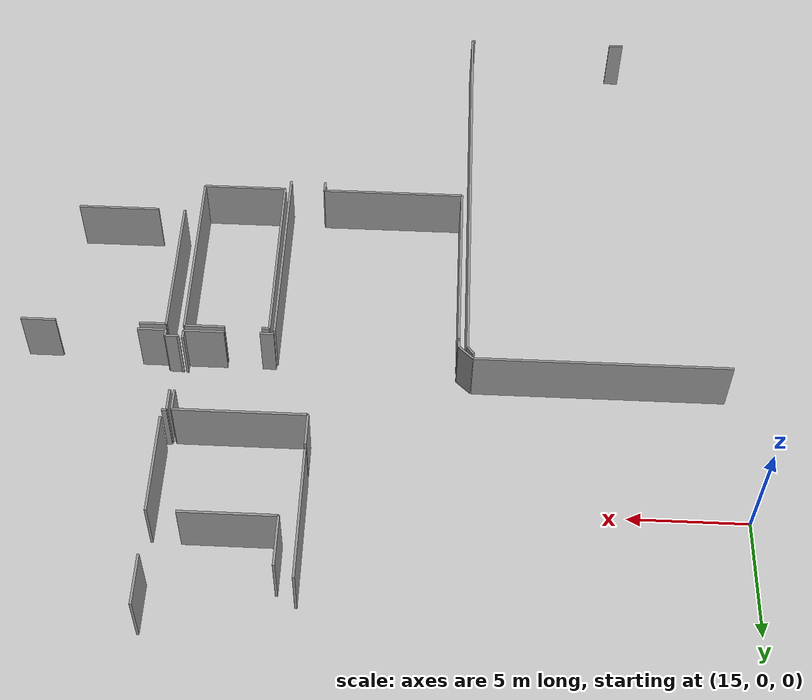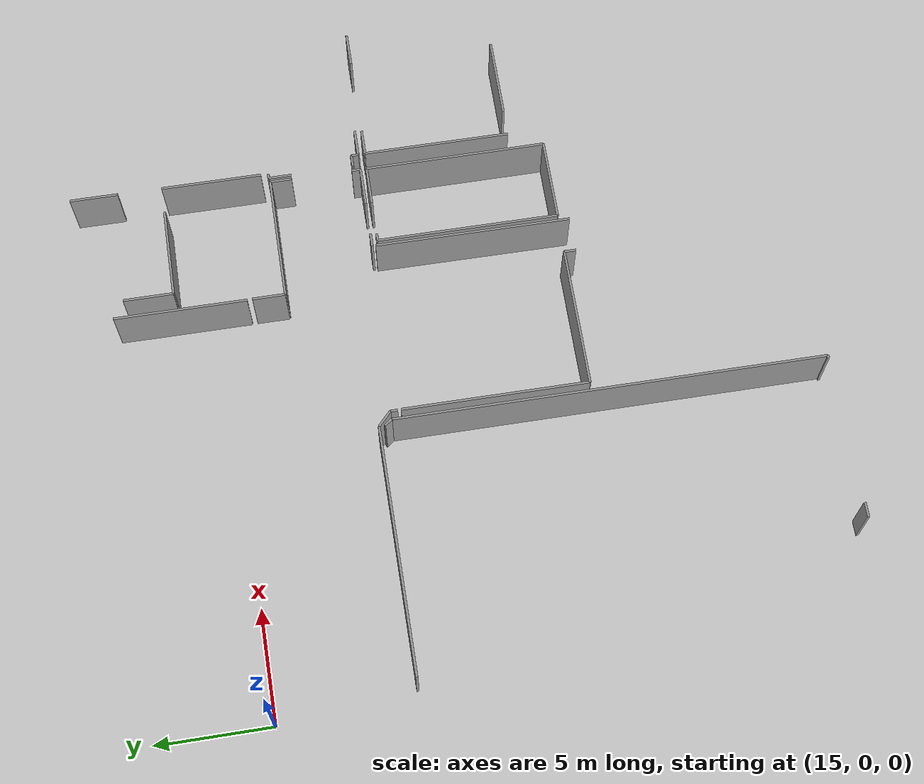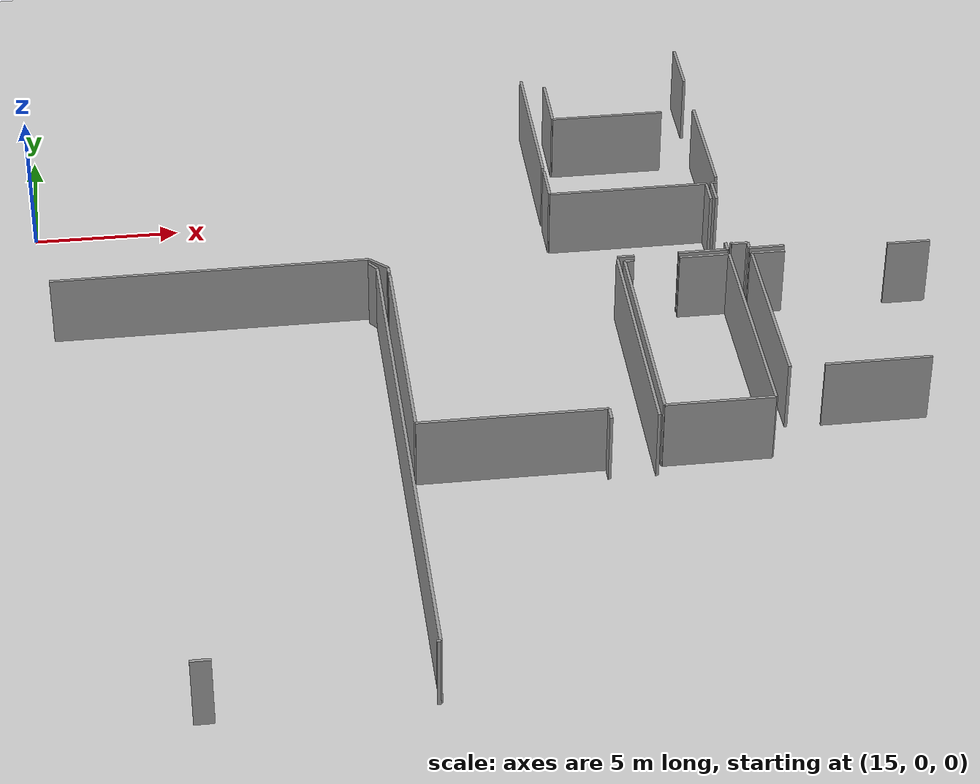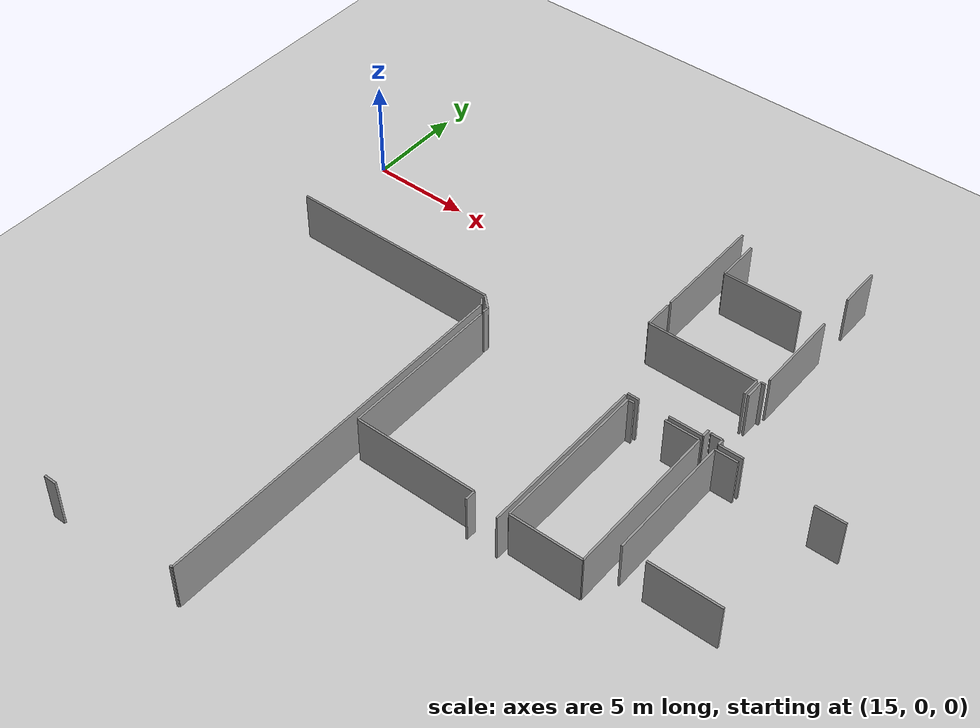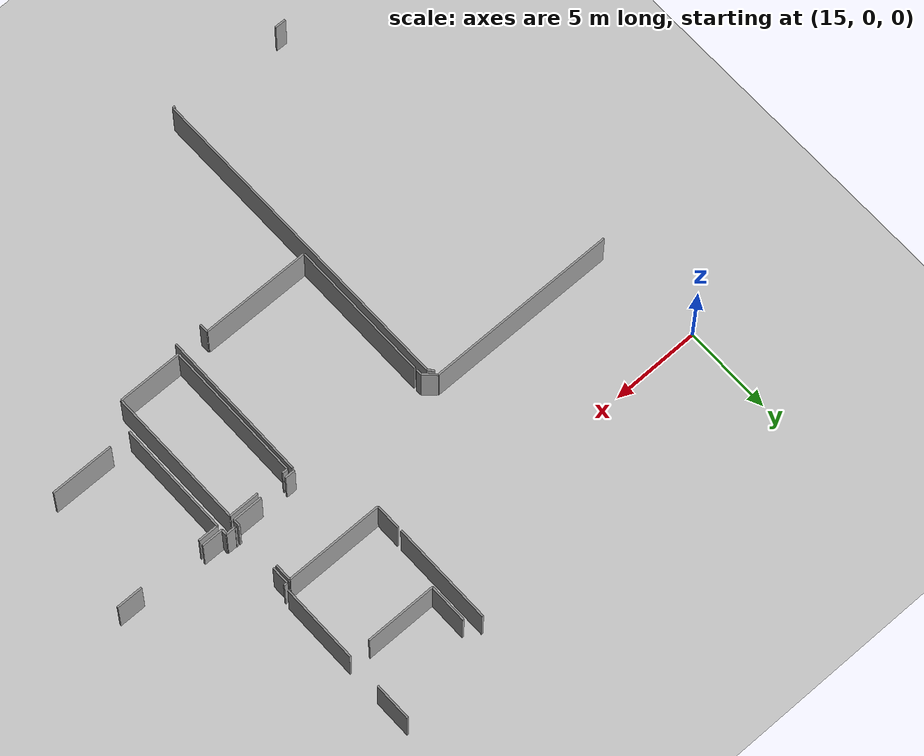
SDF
<sdf version="1.6">
 <world name="default">
  <model name="ground_plane">
   <static>1</static>
   <link name="link">
    <collision name="collision">
     <geometry><plane><normal>0 0 1</normal><size>100 100</size></plane></geometry>
     <surface><friction><ode><mu>100</mu><mu2>50</mu2></ode></friction></surface>
    </collision>
    <visual name="visual">
     <cast_shadows>0</cast_shadows>
     <geometry><plane><normal>0 0 1</normal><size>100 100</size></plane></geometry>
     <material>
      <script><uri>file://media/materials/scripts/gazebo.material</uri><name>Gazebo/Grey</name></script>
     </material>
    </visual>
   </link>
  </model>
  <model name="0510032218_A-40">
   <static>1</static>
   <link name="Wall_156">
    <collision name="Wall_156_Collision">
     <geometry><box><size>4.40326214578 0.1 2.5</size></box></geometry>
     <pose>2.20163107289 0 1.25 0 0 0</pose>
    </collision>
    <visual name="Wall_156_Visual">
     <pose>2.20163107289 0 1.25 0 0 0</pose>
     <geometry><box><size>4.40326214578 0.1 2.5</size></box></geometry>
     <material>
      <script><uri>file://media/materials/scripts/gazebo.material</uri><name>Gazebo/Grey</name></script>
      <ambient>1 1 1 1</ambient>
     </material>
    </visual>
    <pose>113.745527243 -52.1540951353 0 0 0 1.57079632679</pose>
   </link>
   <link name="Wall_157">
    <collision name="Wall_157_Collision">
     <geometry><box><size>2.11531748802 0.1 2.5</size></box></geometry>
     <pose>1.05765874401 0 1.25 0 0 0</pose>
    </collision>
    <visual name="Wall_157_Visual">
     <pose>1.05765874401 0 1.25 0 0 0</pose>
     <geometry><box><size>2.11531748802 0.1 2.5</size></box></geometry>
     <material>
      <script><uri>file://media/materials/scripts/gazebo.material</uri><name>Gazebo/Grey</name></script>
      <ambient>1 1 1 1</ambient>
     </material>
    </visual>
    <pose>113.745527243 -45.8170278933 0 0 0 1.57079632679</pose>
   </link>
   <link name="Wall_173">
    <collision name="Wall_173_Collision">
     <geometry><box><size>3.98781455272 0.1 2.5</size></box></geometry>
     <pose>1.99390727636 0 1.25 0 0 0</pose>
    </collision>
    <visual name="Wall_173_Visual">
     <pose>1.99390727636 0 1.25 0 0 0</pose>
     <geometry><box><size>3.98781455272 0.1 2.5</size></box></geometry>
     <material>
      <script><uri>file://media/materials/scripts/gazebo.material</uri><name>Gazebo/Grey</name></script>
      <ambient>1 1 1 1</ambient>
     </material>
    </visual>
    <pose>112.562396471 -47.7686034335 0 0 0 3.14159265359</pose>
   </link>
   <link name="Wall_174">
    <collision name="Wall_174_Collision">
     <geometry><box><size>2.17484847523 0.1 2.5</size></box></geometry>
     <pose>1.08742423762 0 1.25 0 0 0</pose>
    </collision>
    <visual name="Wall_174_Visual">
     <pose>1.08742423762 0 1.25 0 0 0</pose>
     <geometry><box><size>2.17484847523 0.1 2.5</size></box></geometry>
     <material>
      <script><uri>file://media/materials/scripts/gazebo.material</uri><name>Gazebo/Grey</name></script>
      <ambient>1 1 1 1</ambient>
     </material>
    </visual>
    <pose>108.574581919 -47.7686034335 0 0 0 1.57079632679</pose>
   </link>
   <link name="Wall_178">
    <collision name="Wall_178_Collision">
     <geometry><box><size>1.21016723257 0.1 2.5</size></box></geometry>
     <pose>0.605083616285 0 1.25 0 0 0</pose>
    </collision>
    <visual name="Wall_178_Visual">
     <pose>0.605083616285 0 1.25 0 0 0</pose>
     <geometry><box><size>1.21016723257 0.1 2.5</size></box></geometry>
     <material>
      <script><uri>file://media/materials/scripts/gazebo.material</uri><name>Gazebo/Grey</name></script>
      <ambient>1 1 1 1</ambient>
     </material>
    </visual>
    <pose>115.300314156 -56.5499952401 0 0 0 3.14159265359</pose>
   </link>
   <link name="Wall_179">
    <collision name="Wall_179_Collision">
     <geometry><box><size>0.311363564243 0.1 2.5</size></box></geometry>
     <pose>0.155681782122 0 1.25 0 0 0</pose>
    </collision>
    <visual name="Wall_179_Visual">
     <pose>0.155681782122 0 1.25 0 0 0</pose>
     <geometry><box><size>0.311363564243 0.1 2.5</size></box></geometry>
     <material>
      <script><uri>file://media/materials/scripts/gazebo.material</uri><name>Gazebo/Grey</name></script>
      <ambient>1 1 1 1</ambient>
     </material>
    </visual>
    <pose>114.090146923 -56.5499952401 0 0 0 1.57079632679</pose>
   </link>
   <link name="Wall_180">
    <collision name="Wall_180_Collision">
     <geometry><box><size>0.559134325516 0.1 2.5</size></box></geometry>
     <pose>0.279567162758 0 1.25 0 0 0</pose>
    </collision>
    <visual name="Wall_180_Visual">
     <pose>0.279567162758 0 1.25 0 0 0</pose>
     <geometry><box><size>0.559134325516 0.1 2.5</size></box></geometry>
     <material>
      <script><uri>file://media/materials/scripts/gazebo.material</uri><name>Gazebo/Grey</name></script>
      <ambient>1 1 1 1</ambient>
     </material>
    </visual>
    <pose>114.090146923 -56.2386316758 0 0 0 3.14159265359</pose>
   </link>
   <link name="Wall_181">
    <collision name="Wall_181_Collision">
     <geometry><box><size>0.066893028274 0.1 2.5</size></box></geometry>
     <pose>0.033446514137 0 1.25 0 0 0</pose>
    </collision>
    <visual name="Wall_181_Visual">
     <pose>0.033446514137 0 1.25 0 0 0</pose>
     <geometry><box><size>0.066893028274 0.1 2.5</size></box></geometry>
     <material>
      <script><uri>file://media/materials/scripts/gazebo.material</uri><name>Gazebo/Grey</name></script>
      <ambient>1 1 1 1</ambient>
     </material>
    </visual>
    <pose>113.531012598 -56.2386316758 0 0 0 1.57079632679</pose>
   </link>
   <link name="Wall_182">
    <collision name="Wall_182_Collision">
     <geometry><box><size>0.993113952972 0.1 2.5</size></box></geometry>
     <pose>0.496556976486 0 1.25 0 0 0</pose>
    </collision>
    <visual name="Wall_182_Visual">
     <pose>0.496556976486 0 1.25 0 0 0</pose>
     <geometry><box><size>0.993113952972 0.1 2.5</size></box></geometry>
     <material>
      <script><uri>file://media/materials/scripts/gazebo.material</uri><name>Gazebo/Grey</name></script>
      <ambient>1 1 1 1</ambient>
     </material>
    </visual>
    <pose>113.531012598 -53.476089233 0 0 0 1.57079632679</pose>
   </link>
   <link name="Wall_183">
    <collision name="Wall_183_Collision">
     <geometry><box><size>0.208675784597 0.1 2.5</size></box></geometry>
     <pose>0.104337892298 0 1.25 0 0 0</pose>
    </collision>
    <visual name="Wall_183_Visual">
     <pose>0.104337892298 0 1.25 0 0 0</pose>
     <geometry><box><size>0.208675784597 0.1 2.5</size></box></geometry>
     <material>
      <script><uri>file://media/materials/scripts/gazebo.material</uri><name>Gazebo/Grey</name></script>
      <ambient>1 1 1 1</ambient>
     </material>
    </visual>
    <pose>113.531012598 -52.48297528 0 0 0 0.0</pose>
   </link>
   <link name="Wall_243">
    <collision name="Wall_243_Collision">
     <geometry><box><size>3.5608161711 0.1 2.5</size></box></geometry>
     <pose>1.78040808555 0 1.25 0 0 0</pose>
    </collision>
    <visual name="Wall_243_Visual">
     <pose>1.78040808555 0 1.25 0 0 0</pose>
     <geometry><box><size>3.5608161711 0.1 2.5</size></box></geometry>
     <material>
      <script><uri>file://media/materials/scripts/gazebo.material</uri><name>Gazebo/Grey</name></script>
      <ambient>1 1 1 1</ambient>
     </material>
    </visual>
    <pose>118.841963634 -63.2851204265 0 0 0 3.14159265359</pose>
   </link>
   <link name="Wall_244">
    <collision name="Wall_244_Collision">
     <geometry><box><size>6.43061593628 0.1 2.5</size></box></geometry>
     <pose>3.21530796814 0 1.25 0 0 0</pose>
    </collision>
    <visual name="Wall_244_Visual">
     <pose>3.21530796814 0 1.25 0 0 0</pose>
     <geometry><box><size>6.43061593628 0.1 2.5</size></box></geometry>
     <material>
      <script><uri>file://media/materials/scripts/gazebo.material</uri><name>Gazebo/Grey</name></script>
      <ambient>1 1 1 1</ambient>
     </material>
    </visual>
    <pose>114.115152477 -63.2851204265 0 0 0 1.57079632679</pose>
   </link>
   <link name="Wall_245">
    <collision name="Wall_245_Collision">
     <geometry><box><size>1.13807000286 0.1 2.5</size></box></geometry>
     <pose>0.569035001428 0 1.25 0 0 0</pose>
    </collision>
    <visual name="Wall_245_Visual">
     <pose>0.569035001428 0 1.25 0 0 0</pose>
     <geometry><box><size>1.13807000286 0.1 2.5</size></box></geometry>
     <material>
      <script><uri>file://media/materials/scripts/gazebo.material</uri><name>Gazebo/Grey</name></script>
      <ambient>1 1 1 1</ambient>
     </material>
    </visual>
    <pose>114.115152477 -56.8545044902 0 0 0 0.0</pose>
   </link>
   <link name="Wall_246">
    <collision name="Wall_246_Collision">
     <geometry><box><size>1.48256275188 0.1 2.5</size></box></geometry>
     <pose>0.74128137594 0 1.25 0 0 0</pose>
    </collision>
    <visual name="Wall_246_Visual">
     <pose>0.74128137594 0 1.25 0 0 0</pose>
     <geometry><box><size>1.48256275188 0.1 2.5</size></box></geometry>
     <material>
      <script><uri>file://media/materials/scripts/gazebo.material</uri><name>Gazebo/Grey</name></script>
      <ambient>1 1 1 1</ambient>
     </material>
    </visual>
    <pose>118.81911592 -56.8545044902 0 0 0 0.0</pose>
   </link>
   <link name="Wall_267">
    <collision name="Wall_267_Collision">
     <geometry><box><size>1.42569733126 0.1 2.5</size></box></geometry>
     <pose>0.71284866563 0 1.25 0 0 0</pose>
    </collision>
    <visual name="Wall_267_Visual">
     <pose>0.71284866563 0 1.25 0 0 0</pose>
     <geometry><box><size>1.42569733126 0.1 2.5</size></box></geometry>
     <material>
      <script><uri>file://media/materials/scripts/gazebo.material</uri><name>Gazebo/Grey</name></script>
      <ambient>1 1 1 1</ambient>
     </material>
    </visual>
    <pose>107.791413068 -51.0990384921 0 0 0 -1.57079632679</pose>
   </link>
   <link name="Wall_268">
    <collision name="Wall_268_Collision">
     <geometry><box><size>5.54767873576 0.1 2.5</size></box></geometry>
     <pose>2.77383936788 0 1.25 0 0 0</pose>
    </collision>
    <visual name="Wall_268_Visual">
     <pose>2.77383936788 0 1.25 0 0 0</pose>
     <geometry><box><size>5.54767873576 0.1 2.5</size></box></geometry>
     <material>
      <script><uri>file://media/materials/scripts/gazebo.material</uri><name>Gazebo/Grey</name></script>
      <ambient>1 1 1 1</ambient>
     </material>
    </visual>
    <pose>107.791413068 -52.5247358233 0 0 0 0.0</pose>
   </link>
   <link name="Wall_269">
    <collision name="Wall_269_Collision">
     <geometry><box><size>0.951353409704 0.1 2.5</size></box></geometry>
     <pose>0.475676704852 0 1.25 0 0 0</pose>
    </collision>
    <visual name="Wall_269_Visual">
     <pose>0.475676704852 0 1.25 0 0 0</pose>
     <geometry><box><size>0.951353409704 0.1 2.5</size></box></geometry>
     <material>
      <script><uri>file://media/materials/scripts/gazebo.material</uri><name>Gazebo/Grey</name></script>
      <ambient>1 1 1 1</ambient>
     </material>
    </visual>
    <pose>113.339091803 -52.5247358233 0 0 0 -1.57079632679</pose>
   </link>
   <link name="Wall_270">
    <collision name="Wall_270_Collision">
     <geometry><box><size>0.393488401612 0.1 2.5</size></box></geometry>
     <pose>0.196744200806 0 1.25 0 0 0</pose>
    </collision>
    <visual name="Wall_270_Visual">
     <pose>0.196744200806 0 1.25 0 0 0</pose>
     <geometry><box><size>0.393488401612 0.1 2.5</size></box></geometry>
     <material>
      <script><uri>file://media/materials/scripts/gazebo.material</uri><name>Gazebo/Grey</name></script>
      <ambient>1 1 1 1</ambient>
     </material>
    </visual>
    <pose>113.339091803 -56.1539682036 0 0 0 -1.57079632679</pose>
   </link>
   <link name="Wall_271">
    <collision name="Wall_271_Collision">
     <geometry><box><size>1.7050740964 0.1 2.5</size></box></geometry>
     <pose>0.852537048202 0 1.25 0 0 0</pose>
    </collision>
    <visual name="Wall_271_Visual">
     <pose>0.852537048202 0 1.25 0 0 0</pose>
     <geometry><box><size>1.7050740964 0.1 2.5</size></box></geometry>
     <material>
      <script><uri>file://media/materials/scripts/gazebo.material</uri><name>Gazebo/Grey</name></script>
      <ambient>1 1 1 1</ambient>
     </material>
    </visual>
    <pose>113.339091803 -56.5474566052 0 0 0 3.14159265359</pose>
   </link>
   <link name="Wall_272">
    <collision name="Wall_272_Collision">
     <geometry><box><size>0.585409196205 0.1 2.5</size></box></geometry>
     <pose>0.292704598102 0 1.25 0 0 0</pose>
    </collision>
    <visual name="Wall_272_Visual">
     <pose>0.292704598102 0 1.25 0 0 0</pose>
     <geometry><box><size>0.585409196205 0.1 2.5</size></box></geometry>
     <material>
      <script><uri>file://media/materials/scripts/gazebo.material</uri><name>Gazebo/Grey</name></script>
      <ambient>1 1 1 1</ambient>
     </material>
    </visual>
    <pose>110.117437248 -56.5474566052 0 0 0 3.14159265359</pose>
   </link>
   <link name="Wall_273">
    <collision name="Wall_273_Collision">
     <geometry><box><size>0.308824929394 0.1 2.5</size></box></geometry>
     <pose>0.154412464697 0 1.25 0 0 0</pose>
    </collision>
    <visual name="Wall_273_Visual">
     <pose>0.154412464697 0 1.25 0 0 0</pose>
     <geometry><box><size>0.308824929394 0.1 2.5</size></box></geometry>
     <material>
      <script><uri>file://media/materials/scripts/gazebo.material</uri><name>Gazebo/Grey</name></script>
      <ambient>1 1 1 1</ambient>
     </material>
    </visual>
    <pose>101.746542697 -56.5474566052 0 0 0 1.57079632679</pose>
   </link>
   <link name="Wall_274">
    <collision name="Wall_274_Collision">
     <geometry><box><size>0.832635862609 0.1 2.5</size></box></geometry>
     <pose>0.416317931304 0 1.25 0 0 0</pose>
    </collision>
    <visual name="Wall_274_Visual">
     <pose>0.416317931304 0 1.25 0 0 0</pose>
     <geometry><box><size>0.832635862609 0.1 2.5</size></box></geometry>
     <material>
      <script><uri>file://media/materials/scripts/gazebo.material</uri><name>Gazebo/Grey</name></script>
      <ambient>1 1 1 1</ambient>
     </material>
    </visual>
    <pose>101.746542697 -56.2386316758 0 0 0 2.39166660733</pose>
   </link>
   <link name="Wall_275">
    <collision name="Wall_275_Collision">
     <geometry><box><size>10.7747278901 0.1 2.5</size></box></geometry>
     <pose>5.38736394504 0 1.25 0 0 0</pose>
    </collision>
    <visual name="Wall_275_Visual">
     <pose>5.38736394504 0 1.25 0 0 0</pose>
     <geometry><box><size>10.7747278901 0.1 2.5</size></box></geometry>
     <material>
      <script><uri>file://media/materials/scripts/gazebo.material</uri><name>Gazebo/Grey</name></script>
      <ambient>1 1 1 1</ambient>
     </material>
    </visual>
    <pose>101.137270333 -55.6711198553 0 0 0 3.14159265359</pose>
   </link>
   <link name="Wall_288">
    <collision name="Wall_288_Collision">
     <geometry><box><size>3.61755465998 0.1 2.5</size></box></geometry>
     <pose>1.80877732999 0 1.25 0 0 0</pose>
    </collision>
    <visual name="Wall_288_Visual">
     <pose>1.80877732999 0 1.25 0 0 0</pose>
     <geometry><box><size>3.61755465998 0.1 2.5</size></box></geometry>
     <material>
      <script><uri>file://media/materials/scripts/gazebo.material</uri><name>Gazebo/Grey</name></script>
      <ambient>1 1 1 1</ambient>
     </material>
    </visual>
    <pose>113.364858947 -64.773268175 0 0 0 3.14159265359</pose>
   </link>
   <link name="Wall_289">
    <collision name="Wall_289_Collision">
     <geometry><box><size>7.95658934408 0.1 2.5</size></box></geometry>
     <pose>3.97829467204 0 1.25 0 0 0</pose>
    </collision>
    <visual name="Wall_289_Visual">
     <pose>3.97829467204 0 1.25 0 0 0</pose>
     <geometry><box><size>7.95658934408 0.1 2.5</size></box></geometry>
     <material>
      <script><uri>file://media/materials/scripts/gazebo.material</uri><name>Gazebo/Grey</name></script>
      <ambient>1 1 1 1</ambient>
     </material>
    </visual>
    <pose>109.747304287 -64.773268175 0 0 0 1.57079632679</pose>
   </link>
   <link name="Wall_290">
    <collision name="Wall_290_Collision">
     <geometry><box><size>0.318471741821 0.1 2.5</size></box></geometry>
     <pose>0.15923587091 0 1.25 0 0 0</pose>
    </collision>
    <visual name="Wall_290_Visual">
     <pose>0.15923587091 0 1.25 0 0 0</pose>
     <geometry><box><size>0.318471741821 0.1 2.5</size></box></geometry>
     <material>
      <script><uri>file://media/materials/scripts/gazebo.material</uri><name>Gazebo/Grey</name></script>
      <ambient>1 1 1 1</ambient>
     </material>
    </visual>
    <pose>109.747304287 -56.816678831 0 0 0 0.0</pose>
   </link>
   <link name="Wall_291">
    <collision name="Wall_291_Collision">
     <geometry><box><size>1.71078602482 0.1 2.5</size></box></geometry>
     <pose>0.855393012408 0 1.25 0 0 0</pose>
    </collision>
    <visual name="Wall_291_Visual">
     <pose>0.855393012408 0 1.25 0 0 0</pose>
     <geometry><box><size>1.71078602482 0.1 2.5</size></box></geometry>
     <material>
      <script><uri>file://media/materials/scripts/gazebo.material</uri><name>Gazebo/Grey</name></script>
      <ambient>1 1 1 1</ambient>
     </material>
    </visual>
    <pose>111.632494526 -56.816678831 0 0 0 0.0</pose>
   </link>
   <link name="Wall_292">
    <collision name="Wall_292_Collision">
     <geometry><box><size>7.9566186045 0.1 2.5</size></box></geometry>
     <pose>3.97830930225 0 1.25 0 0 0</pose>
    </collision>
    <visual name="Wall_292_Visual">
     <pose>3.97830930225 0 1.25 0 0 0</pose>
     <geometry><box><size>7.9566186045 0.1 2.5</size></box></geometry>
     <material>
      <script><uri>file://media/materials/scripts/gazebo.material</uri><name>Gazebo/Grey</name></script>
      <ambient>1 1 1 1</ambient>
     </material>
    </visual>
    <pose>113.343280551 -56.816678831 0 0 0 -1.56808431762</pose>
   </link>
   <link name="Wall_293">
    <collision name="Wall_293_Collision">
     <geometry><box><size>0.508742423762 0.1 2.5</size></box></geometry>
     <pose>0.254371211881 0 1.25 0 0 0</pose>
    </collision>
    <visual name="Wall_293_Visual">
     <pose>0.254371211881 0 1.25 0 0 0</pose>
     <geometry><box><size>0.508742423762 0.1 2.5</size></box></geometry>
     <material>
      <script><uri>file://media/materials/scripts/gazebo.material</uri><name>Gazebo/Grey</name></script>
      <ambient>1 1 1 1</ambient>
     </material>
    </visual>
    <pose>107.957947514 -65.2623361787 0 0 0 1.57079632679</pose>
   </link>
   <link name="Wall_294">
    <collision name="Wall_294_Collision">
     <geometry><box><size>6.20023482372 0.1 2.5</size></box></geometry>
     <pose>3.10011741186 0 1.25 0 0 0</pose>
    </collision>
    <visual name="Wall_294_Visual">
     <pose>3.10011741186 0 1.25 0 0 0</pose>
     <geometry><box><size>6.20023482372 0.1 2.5</size></box></geometry>
     <material>
      <script><uri>file://media/materials/scripts/gazebo.material</uri><name>Gazebo/Grey</name></script>
      <ambient>1 1 1 1</ambient>
     </material>
    </visual>
    <pose>107.957947514 -64.753593755 0 0 0 3.14159265359</pose>
   </link>
   <link name="Wall_295">
    <collision name="Wall_295_Collision">
     <geometry><box><size>8.06575064259 0.1 2.5</size></box></geometry>
     <pose>4.0328753213 0 1.25 0 0 0</pose>
    </collision>
    <visual name="Wall_295_Visual">
     <pose>4.0328753213 0 1.25 0 0 0</pose>
     <geometry><box><size>8.06575064259 0.1 2.5</size></box></geometry>
     <material>
      <script><uri>file://media/materials/scripts/gazebo.material</uri><name>Gazebo/Grey</name></script>
      <ambient>1 1 1 1</ambient>
     </material>
    </visual>
    <pose>101.75771269 -64.753593755 0 0 0 1.57079632679</pose>
   </link>
   <link name="Wall_296">
    <collision name="Wall_296_Collision">
     <geometry><box><size>8.57452053856 0.1 2.5</size></box></geometry>
     <pose>4.28726026928 0 1.25 0 0 0</pose>
    </collision>
    <visual name="Wall_296_Visual">
     <pose>4.28726026928 0 1.25 0 0 0</pose>
     <geometry><box><size>8.57452053856 0.1 2.5</size></box></geometry>
     <material>
      <script><uri>file://media/materials/scripts/gazebo.material</uri><name>Gazebo/Grey</name></script>
      <ambient>1 1 1 1</ambient>
     </material>
    </visual>
    <pose>109.524919874 -56.6878431124 0 0 0 -1.57332770462</pose>
   </link>
   <link name="Wall_297">
    <collision name="Wall_297_Collision">
     <geometry><box><size>0.116142544347 0.1 2.5</size></box></geometry>
     <pose>0.0580712721734 0 1.25 0 0 0</pose>
    </collision>
    <visual name="Wall_297_Visual">
     <pose>0.0580712721734 0 1.25 0 0 0</pose>
     <geometry><box><size>0.116142544347 0.1 2.5</size></box></geometry>
     <material>
      <script><uri>file://media/materials/scripts/gazebo.material</uri><name>Gazebo/Grey</name></script>
      <ambient>1 1 1 1</ambient>
     </material>
    </visual>
    <pose>101.39709961 -74.9547171009 0 0 0 3.14159265359</pose>
   </link>
   <link name="Wall_298">
    <collision name="Wall_298_Collision">
     <geometry><box><size>0.64202075334 0.1 2.5</size></box></geometry>
     <pose>0.32101037667 0 1.25 0 0 0</pose>
    </collision>
    <visual name="Wall_298_Visual">
     <pose>0.32101037667 0 1.25 0 0 0</pose>
     <geometry><box><size>0.64202075334 0.1 2.5</size></box></geometry>
     <material>
      <script><uri>file://media/materials/scripts/gazebo.material</uri><name>Gazebo/Grey</name></script>
      <ambient>1 1 1 1</ambient>
     </material>
    </visual>
    <pose>94.7383873322 -74.9547171009 0 0 0 3.14159265359</pose>
   </link>
   <link name="Wall_304">
    <collision name="Wall_304_Collision">
     <geometry><box><size>0.410578178866 0.1 2.5</size></box></geometry>
     <pose>0.205289089433 0 1.25 0 0 0</pose>
    </collision>
    <visual name="Wall_304_Visual">
     <pose>0.205289089433 0 1.25 0 0 0</pose>
     <geometry><box><size>0.410578178866 0.1 2.5</size></box></geometry>
     <material>
      <script><uri>file://media/materials/scripts/gazebo.material</uri><name>Gazebo/Grey</name></script>
      <ambient>1 1 1 1</ambient>
     </material>
    </visual>
    <pose>101.128892838 -55.9131786882 0 0 0 -0.915176098276</pose>
   </link>
   <link name="Wall_305">
    <collision name="Wall_305_Collision">
     <geometry><box><size>18.7160939823 0.1 2.5</size></box></geometry>
     <pose>9.35804699115 0 1.25 0 0 0</pose>
    </collision>
    <visual name="Wall_305_Visual">
     <pose>9.35804699115 0 1.25 0 0 0</pose>
     <geometry><box><size>18.7160939823 0.1 2.5</size></box></geometry>
     <material>
      <script><uri>file://media/materials/scripts/gazebo.material</uri><name>Gazebo/Grey</name></script>
      <ambient>1 1 1 1</ambient>
     </material>
    </visual>
    <pose>101.379202234 -56.2386316758 0 0 0 -1.56984007073</pose>
   </link>
   <link name="Wall_434">
    <collision name="Wall_434_Collision">
     <geometry><box><size>5.76587440104 0.1 2.5</size></box></geometry>
     <pose>2.88293720052 0 1.25 0 0 0</pose>
    </collision>
    <visual name="Wall_434_Visual">
     <pose>2.88293720052 0 1.25 0 0 0</pose>
     <geometry><box><size>5.76587440104 0.1 2.5</size></box></geometry>
     <material>
      <script><uri>file://media/materials/scripts/gazebo.material</uri><name>Gazebo/Grey</name></script>
      <ambient>1 1 1 1</ambient>
     </material>
    </visual>
    <pose>107.779862279 -50.8742423762 0 0 0 1.57079632679</pose>
   </link>
   <pose>-74.8 49.7517929109 0 0 0 0</pose>
  </model>
 </world>
</sdf>
